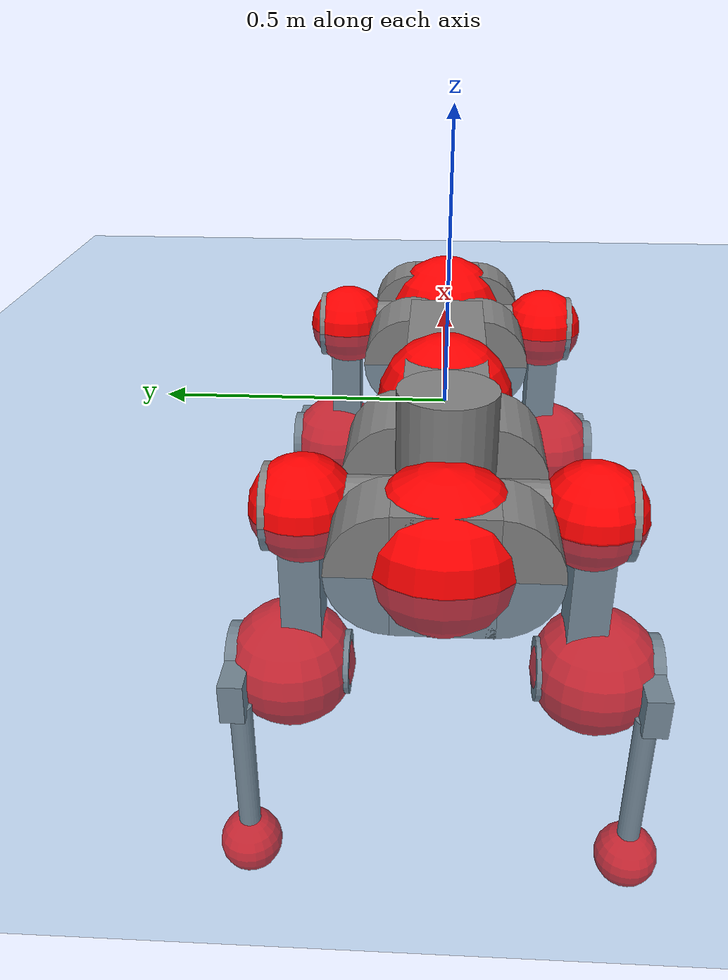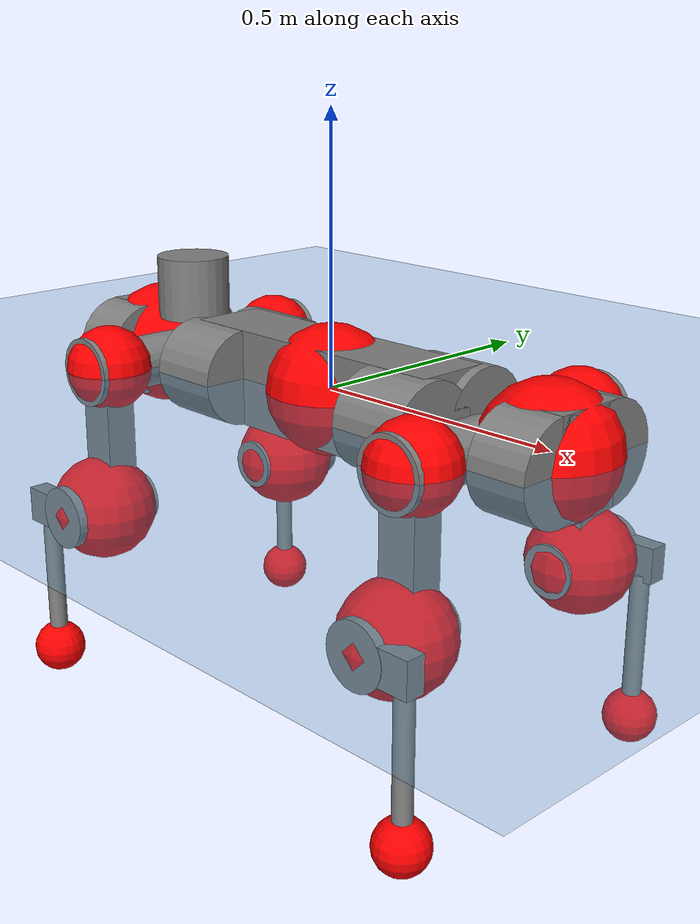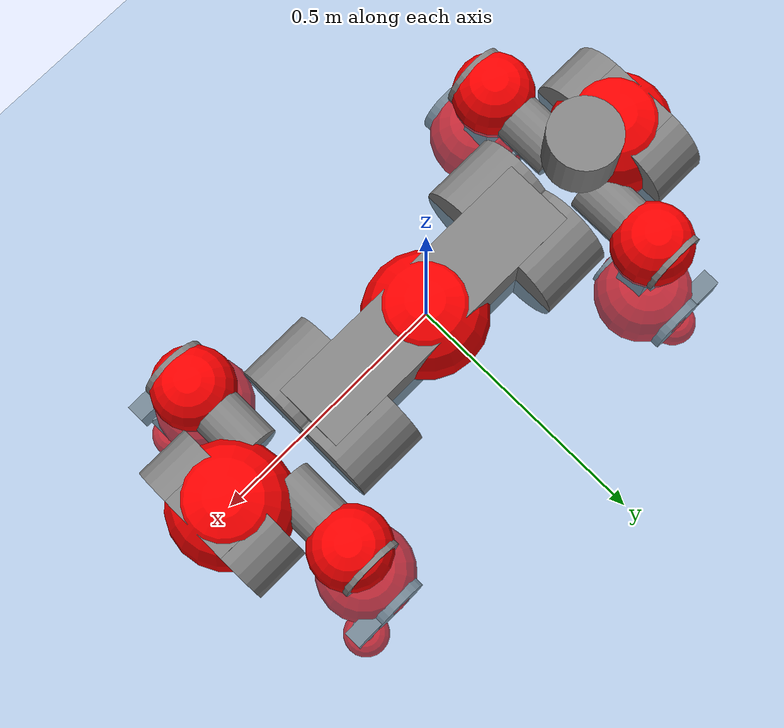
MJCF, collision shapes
<mujoco model="anymal_c">
  <compiler angle="radian" assetdir="assets" balanceinertia="true" inertiafromgeom="false"/>

  <option timestep="0.005" density="1.2" viscosity="2e-05"/>

  <size nkey="1"/>

  <visual>
    <quality shadowsize="8192"/>
    <map shadowclip="0.5"/>
  </visual>

  <default>
    <default class="/">
      <material specular="0" shininess="0.25"/>
      <geom contype="0" conaffinity="0" group="1" solref="-1000 -80"/>
      <site size="0.01 0.005 0.005" group="5"/>
      <general forcelimited="true" forcerange="-80 80" biastype="affine" gainprm="80" biasprm="0 -80 -2"/>
      <default class="anymal_c">
        <joint armature="0.01" damping="0.01" frictionloss="0.1"/>
        <default class="visual">
          <geom type="mesh" group="2"/>
          <default class="visual_zflip"/>
        </default>
        <default class="collision">
          <geom type="cylinder" group="3"/>
          <default class="foot">
            <geom size="0.03 0 0" type="sphere" condim="6" priority="1" friction="0.8 0.02 0.01" solimp="0.015 1 0.03"/>
          </default>
        </default>
      </default>
      <default class="reward_collision_sphere">
        <geom group="5" rgba="1 0 0 1"/>
      </default>
    </default>
  </default>

  <asset>
    <texture type="skybox" colorspace="auto" name="//unnamed_texture_0" builtin="gradient" rgb1="0.95 0.95 0.95" rgb2="0.95 0.95 0.95" width="100" height="600"/>
    <texture type="2d" colorspace="auto" name="texplane" builtin="checker" rgb1="0.345 0.575 0.748" rgb2="0.345 0.575 0.748" markrgb="1 1 1" width="512" height="512"/>
    <texture type="2d" colorspace="linear" name="base" file="base.png"/>
    <texture type="2d" colorspace="linear" name="top_shell" file="top_shell.png"/>
    <texture type="2d" colorspace="linear" name="bottom_shell" file="bottom_shell.png"/>
    <texture type="2d" colorspace="linear" name="remote" file="remote.png"/>
    <texture type="2d" colorspace="linear" name="hatch" file="hatch.png"/>
    <texture type="2d" colorspace="linear" name="handle" file="handle.png"/>
    <texture type="2d" colorspace="linear" name="face" file="face.png"/>
    <texture type="2d" colorspace="linear" name="battery" file="battery.png"/>
    <texture type="2d" colorspace="linear" name="lidar_cage" file="lidar_cage.png"/>
    <texture type="2d" colorspace="linear" name="depth_camera" file="depth_camera.png"/>
    <texture type="2d" colorspace="linear" name="wide_angle_camera" file="wide_angle_camera.png"/>
    <texture type="2d" colorspace="linear" name="lidar" file="lidar.png"/>
    <texture type="2d" colorspace="linear" name="drive" file="drive.png"/>
    <texture type="2d" colorspace="linear" name="hip_l" file="hip_l.png"/>
    <texture type="2d" colorspace="linear" name="shank_l" file="shank_l.png"/>
    <texture type="2d" colorspace="linear" name="foot" file="foot.png"/>
    <texture type="2d" colorspace="linear" name="thigh" file="thigh.png"/>
    <texture type="2d" colorspace="linear" name="shank_r" file="shank_r.png"/>
    <texture type="2d" colorspace="linear" name="hip_r" file="hip_r.png"/>
    <material name="MatPlane" class="/" texture="texplane" texuniform="true" texrepeat="2 2" specular="0.9" shininess="0.5"/>
    <material name="black_plastic" class="/" rgba="0.007 0.007 0.007 1"/>
    <material name="green" class="/" rgba="0.052 0.178 0.033 1"/>
    <material name="red" class="/" rgba="0.178 0.006 0.005 1"/>
    <material name="yellow" class="/" rgba="0.178 0.119 0.006 1"/>
    <material name="lwl" class="/" rgba="0.8 0.8 0.8 1"/>
    <material name="base" class="/" texture="base"/>
    <material name="top_shell" class="/" texture="top_shell"/>
    <material name="bottom_shell" class="/" texture="bottom_shell"/>
    <material name="hip_l" class="/" texture="hip_l"/>
    <material name="thigh" class="/" texture="thigh"/>
    <material name="shank_l" class="/" texture="shank_l"/>
    <material name="foot" class="/" texture="foot"/>
    <material name="hip_r" class="/" texture="hip_r"/>
    <material name="shank" class="/" texture="shank_r"/>
    <material name="hatch" class="/" texture="hatch"/>
    <material name="remote" class="/" texture="remote"/>
    <material name="handle" class="/" texture="handle"/>
    <material name="face" class="/" texture="face"/>
    <material name="depth_camera" class="/" texture="depth_camera"/>
    <material name="wide_angle_camera" class="/" texture="wide_angle_camera"/>
    <material name="battery" class="/" texture="battery"/>
    <material name="lidar_cage" class="/" texture="lidar_cage"/>
    <material name="lidar" class="/" texture="lidar"/>
    <material name="drive" class="/" texture="drive"/>
    <mesh name="base_0" class="/" file="base_0.obj"/>
    <mesh name="base_1" class="/" file="base_1.obj"/>
    <mesh name="base_2" class="/" file="base_2.obj"/>
    <mesh name="base_3" class="/" file="base_3.obj"/>
    <mesh name="base_4" class="/" file="base_4.obj"/>
    <mesh name="base_5" class="/" file="base_5.obj"/>
    <mesh name="top_shell" class="/" file="top_shell.obj"/>
    <mesh name="bottom_shell" class="/" file="bottom_shell.obj"/>
    <mesh name="remote" class="/" file="remote.obj"/>
    <mesh name="handle" class="/" file="handle.obj"/>
    <mesh name="face" class="/" file="face.obj"/>
    <mesh name="wide_angle_camera" class="/" file="wide_angle_camera.obj"/>
    <mesh name="depth_camera" class="/" file="depth_camera.obj"/>
    <mesh name="battery" class="/" file="battery.obj"/>
    <mesh name="lidar_cage" class="/" file="lidar_cage.obj"/>
    <mesh name="lidar" class="/" file="lidar.obj"/>
    <mesh name="drive" class="/" file="drive.obj"/>
    <mesh name="hip_l" class="/" file="hip_l.obj"/>
    <mesh name="thigh" class="/" file="thigh.obj"/>
    <mesh name="shank_l" class="/" file="shank_l.obj"/>
    <mesh name="foot" class="/" file="foot.obj"/>
    <mesh name="hip_r" class="/" file="hip_r.obj"/>
    <mesh name="hatch" class="/" file="hatch.obj"/>
    <mesh name="shank_r" class="/" file="shank_r.obj"/>
  </asset>

  <worldbody>
    <geom name="floor" class="/" size="100 100 0.125" type="plane" group="0" material="MatPlane"/>
    <light name="toplight_shadow" class="/" pos="0 0 5" dir="0.0990148 0.0990148 -0.990148" type="directional" ambient="0.04 0.04 0.04" diffuse="0.55 0.55 0.55" specular="0.12 0.12 0.12"/>
    <light name="toplight_fill" class="/" pos="0 0 5" dir="0.0990148 0.0990148 -0.990148" type="directional" castshadow="false" ambient="0.04 0.04 0.04" diffuse="0.3 0.3 0.3" specular="0.08 0.08 0.08"/>
    <body name="trunk" childclass="anymal_c" pos="0.00251834 -6.20223e-05 -0.000886535" quat="0.999999 0.000324783 0.000572444 -0.00118886">
      <inertial pos="-6.49963e-05 0.000378306 0.049031" quat="0.502196 0.500437 0.501819 0.495521" mass="18.9334" diaginertia="1.01448 0.477832 0.193652"/>
      <joint name="//unnamed_joint_0" type="free" armature="0" damping="0" frictionloss="0"/>
      <geom name="//unnamed_geom_1" class="visual" material="green" mesh="base_0"/>
      <geom name="//unnamed_geom_2" class="visual" material="yellow" mesh="base_1"/>
      <geom name="//unnamed_geom_3" class="visual" material="red" mesh="base_2"/>
      <geom name="//unnamed_geom_4" class="visual" material="black_plastic" mesh="base_3"/>
      <geom name="//unnamed_geom_5" class="visual" material="lwl" mesh="base_4"/>
      <geom name="//unnamed_geom_6" class="visual" material="base" mesh="base_5"/>
      <geom name="trunk_1" class="collision" size="0.29289 0.0706976 0.0908969" type="box"/>
      <geom name="trunk_2" class="collision" size="0.0908969 0.0732225" pos="0.239113 0.0665351 0" quat="0.707107 0 0.707107 0"/>
      <geom name="trunk_3" class="collision" size="0.0908969 0.0732225" pos="-0.239113 0.0665351 0" quat="0.707107 0 0.707107 0"/>
      <geom name="trunk_4" class="collision" size="0.0908969 0.0732225" pos="0.239113 -0.0665351 0" quat="0.707107 0 0.707107 0"/>
      <geom name="trunk_5" class="collision" size="0.0908969 0.0732225" pos="-0.239113 -0.0665351 0" quat="0.707107 0 0.707107 0"/>
      <geom name="//unnamed_geom_12" class="visual" material="top_shell" mesh="top_shell"/>
      <geom name="//unnamed_geom_13" class="visual" material="bottom_shell" mesh="bottom_shell"/>
      <geom name="//unnamed_geom_14" class="visual" material="remote" mesh="remote"/>
      <geom name="//unnamed_geom_15" class="visual" material="handle" mesh="handle"/>
      <geom name="//unnamed_geom_16" class="visual" pos="0.455688 0 0" quat="1 0 0 0" material="face" mesh="face"/>
      <geom name="trunk_6" class="collision" size="0.0555481 0.0706976 0.0908969" pos="0.516154 0 0" type="box"/>
      <geom name="//unnamed_geom_18" class="collision" size="0.0908969 0.0555481" pos="0.516154 0.0665351 0" quat="0.707107 0 0.707107 0"/>
      <geom name="//unnamed_geom_19" class="collision" size="0.0908969 0.0555481" pos="0.516154 -0.0665351 0" quat="0.707107 0 0.707107 0"/>
      <geom name="//unnamed_geom_20" class="visual" pos="0.507519 0 -0.0277097" quat="0.965926 0 0.258819 0" material="depth_camera" mesh="depth_camera"/>
      <geom name="//unnamed_geom_21" class="visual" pos="0.563976 0 0.014671" material="wide_angle_camera" mesh="wide_angle_camera"/>
      <geom name="//unnamed_geom_22" class="visual_zflip" pos="-0.455688 0 0" quat="0 0 0 1" material="face" mesh="face"/>
      <geom name="trunk_7" class="collision" size="0.0555481 0.0706976 0.0908969" pos="-0.516154 0 0" quat="0 0 0 1" type="box"/>
      <geom name="//unnamed_geom_24" class="collision" size="0.0908969 0.0555481" pos="-0.516154 -0.0665351 0" quat="0 -0.707107 0 0.707107"/>
      <geom name="//unnamed_geom_25" class="collision" size="0.0908969 0.0555481" pos="-0.516154 0.0665351 0" quat="0 -0.707107 0 0.707107"/>
      <geom name="//unnamed_geom_26" class="visual" pos="-0.507519 0 -0.0277097" quat="0 -0.258819 0 0.965926" material="depth_camera" mesh="depth_camera"/>
      <geom name="//unnamed_geom_27" class="visual_zflip" pos="-0.563976 0 0.014671" quat="0 0 0 1" material="wide_angle_camera" mesh="wide_angle_camera"/>
      <geom name="//unnamed_geom_28" class="visual" material="battery" mesh="battery"/>
      <geom name="//unnamed_geom_29" class="visual" pos="0 0.070717 0.0293767" quat="0.683013 -0.183013 0.183013 0.683013" material="depth_camera" mesh="depth_camera"/>
      <geom name="//unnamed_geom_30" class="visual" pos="0 -0.070717 0.0293767" quat="0.683013 0.183013 0.183013 -0.683013" material="depth_camera" mesh="depth_camera"/>
      <geom name="//unnamed_geom_31" class="visual" pos="-0.40017 0 0.0720319" quat="1 0 0 0" material="lidar_cage" mesh="lidar_cage"/>
      <geom name="trunk_8" class="collision" size="0.0706976 0.0605979" pos="-0.40017 0 0.130833"/>
      <geom name="//unnamed_geom_33" class="visual" pos="-0.40017 -5.84857e-05 0.13936" quat="0.707107 0 0 -0.707107" material="lidar" mesh="lidar"/>
      <geom name="//unnamed_geom_34" class="visual" pos="0.329701 0.0988627 -5.0928e-10" quat="0.258819 0.965926 0 0" material="drive" mesh="drive"/>
      <geom name="//unnamed_geom_35" class="visual" pos="0.329701 -0.0988627 5.0928e-10" quat="0.258819 -0.965926 0 0" material="drive" mesh="drive"/>
      <geom name="//unnamed_geom_36" class="visual" pos="-0.329701 0.0988627 5.0928e-10" quat="0 0 0.965926 -0.258819" material="drive" mesh="drive"/>
      <geom name="//unnamed_geom_37" class="visual" pos="-0.329701 -0.0988627 -5.0928e-10" quat="0 0 -0.965926 -0.258819" material="drive" mesh="drive"/>
      <geom name="//unnamed_geom_38" class="visual" pos="0.127527 0 0.0715418" quat="1 0 0 0" material="hatch" mesh="hatch"/>
      <geom name="//unnamed_geom_39" class="reward_collision_sphere" size="0.121196"/>
      <geom name="//unnamed_geom_40" class="reward_collision_sphere" size="0.121196" pos="0.494716 0 0"/>
      <geom name="//unnamed_geom_41" class="reward_collision_sphere" size="0.121196" pos="-0.494716 0 0"/>
      <site name="imu" pos="0.274221 0.0150393 0.0590326" size="0.0100997"/>
      <camera name="track" pos="0 -1.901 0" quat="0.707107 0.707107 0 0" mode="trackcom"/>
      <camera name="ego_camera" pos="0.494716 0 -0.039201" quat="-0.5 -0.5 0.5 0.5"/>
      <body name="LF_HIP" pos="0.329975 0.100311 0.000195917" quat="0.258564 0.965994 -0.000120496 -6.55617e-05">
        <inertial pos="0.0613189 -0.0165409 -0.00707331" quat="-0.126199 0.709425 -0.134733 0.680174" mass="2.79598" diaginertia="0.00957316 0.0038241 0.00297548"/>
        <joint name="LF_HAA" pos="0 0 0" axis="0.999892 0.00780225 -0.012445" range="-0.667047 0.504269" armature="0.00993498" damping="0.0156214" frictionloss="0.100012"/>
        <geom name="//unnamed_geom_42" class="visual" pos="0 -2.99586e-05 4.92068e-06" quat="0.258819 -0.965926 0 0" material="hip_l" mesh="hip_l"/>
        <geom name="//unnamed_geom_43" class="visual" pos="0.0658522 -0.0778444 -0.0451618" quat="0.183013 -0.683013 0.683013 0.183013" material="drive" mesh="drive"/>
        <geom name="//unnamed_geom_44" class="collision" size="0.0504983 0.0706976" pos="0.0658522 -0.0113678 -0.00676707" quat="-0.353553 -0.612372 0.612372 -0.353553"/>
        <body name="LF_THIGH" pos="0.0674322 -0.0684898 -0.0394678" quat="0.182676 -0.682227 0.683668 0.183828">
          <inertial pos="0.0365228 -0.00187775 -0.243501" quat="0.993157 -0.00458614 -0.0805884 0.0844007" mass="3.06088" diaginertia="0.0477239 0.0224954 0.00378006"/>
          <joint name="LF_HFE" pos="0 0 0" axis="0.999999 0.000755767 -0.00085664" range="-3.13542 3.14064" armature="0.00998405" damping="0.0124521" frictionloss="0.10199"/>
          <geom name="//unnamed_geom_45" class="visual" pos="0.00296186 4.6672e-06 0" quat="0.707107 0 0 -0.707107" material="thigh" mesh="thigh"/>
          <geom name="//unnamed_geom_46" class="collision" size="0.0656477 0.0403986" pos="0.0439747 0 0" quat="0.5 0.5 -0.5 -0.5"/>
          <geom name="//unnamed_geom_47" class="collision" size="0.0378737 0.030299 0.142722" pos="0.0329811 0 -0.138491" quat="0.707107 0 0 -0.707107" type="box"/>
          <geom name="//unnamed_geom_48" class="visual" pos="0.110267 0 -0.279307" quat="1 0 0 0" material="drive" mesh="drive"/>
          <geom name="//unnamed_geom_49" class="collision" size="0.0504983 0.0706976" pos="0.0333109 0 -0.279307" quat="0.707107 0 0.707107 0"/>
          <geom name="//unnamed_geom_50" class="reward_collision_sphere" size="0.0807972" pos="0.0274842 0 0"/>
          <body name="LF_SHANK" pos="0.109534 -0.00313384 -0.279185" quat="0.999999 -4.68692e-05 0.000603515 0.00085926">
            <inertial pos="0.00335155 -0.0580185 -0.0769288" quat="0.992946 -0.115631 -0.00162798 -0.0261616" mass="0.605183" diaginertia="0.0164595 0.00756931 0.0010352"/>
            <joint name="LF_KFE" pos="0 0 0" axis="0.999999 0.000713583 0.000753445" range="-3.1949 3.14552" armature="0.0106647" damping="0" frictionloss="0.107392"/>
            <geom name="//unnamed_geom_51" class="visual" pos="0.000965799 0.00514969 0" quat="0.707107 0 0 -0.707107" material="shank_l" mesh="shank_l"/>
            <geom name="LF_kfe_act" class="collision" size="0.0605979 0.0201993" pos="0.0219874 0 0" quat="0.5 0.5 -0.5 -0.5"/>
            <geom name="//unnamed_geom_53" class="collision" size="0.058072 0.0340863 0.0191893" pos="0.0219874 -0.0546529 0" quat="0.5 0.5 -0.5 -0.5" type="box"/>
            <geom name="//unnamed_geom_54" class="visual" pos="0.0143465 -0.0819371 -0.331219" quat="0.382683 0 0 -0.92388" material="foot" mesh="foot"/>
            <geom name="LF_calf" class="collision" size="0.0176744 0.14266" pos="0.0143468 -0.0835966 -0.16561" quat="0.707107 0 0 -0.707107"/>
            <geom name="LF_foot" class="foot" size="0.0327075" pos="0.0143468 -0.0835966 -0.309169" quat="0.707107 0 0 -0.707107"/>
            <geom name="//unnamed_geom_57" class="reward_collision_sphere" size="0.100997" pos="-0.0549684 0 0"/>
            <geom name="//unnamed_geom_58" class="reward_collision_sphere" size="0.0504983" pos="0.0143468 -0.0835966 -0.309169"/>
            <site name="LF_foot" class="foot" pos="0.0143468 -0.0835966 -0.309169" quat="0.707107 0 0 -0.707107" size="0.0100997"/>
          </body>
        </body>
      </body>
      <body name="RF_HIP" pos="0.329099 -0.0987108 -0.00253026" quat="0.258258 -0.966075 -0.00116837 -0.000675398">
        <inertial pos="0.0637166 0.0122851 -0.00793397" quat="0.14342 0.67072 0.131086 0.715808" mass="2.83228" diaginertia="0.00894263 0.00374741 0.00284355"/>
        <joint name="RF_HAA" pos="0 0 0" axis="0.99999 0.00426038 0.00127865" range="-0.499244 0.725834" armature="0.00982249" damping="0.0105159" frictionloss="0.0873468"/>
        <geom name="//unnamed_geom_59" class="visual" pos="0 2.99584e-05 4.92067e-06" quat="0.258819 0.965926 0 0" material="hip_r" mesh="hip_r"/>
        <geom name="//unnamed_geom_60" class="visual" pos="0.0658522 0.0778444 -0.0451618" quat="0.183013 0.683013 0.683013 -0.183013" material="drive" mesh="drive"/>
        <geom name="//unnamed_geom_61" class="collision" size="0.0504983 0.0706976" pos="0.0658522 0.0113678 -0.00676707" quat="-0.353553 0.612372 0.612372 0.353553"/>
        <body name="RF_THIGH" pos="0.0658355 0.0660938 -0.040293" quat="0.183047 0.683069 0.682994 -0.18284">
          <inertial pos="0.0355209 -0.00257259 -0.240197" quat="0.991556 -0.00272277 -0.086196 0.096847" mass="3.19732" diaginertia="0.0481333 0.0230063 0.00386038"/>
          <joint name="RF_HFE" pos="0 0 0" axis="0.999999 -0.000107227 -0.00133463" range="-3.12409 3.19244" armature="0.0101026" damping="0.0150719" frictionloss="0.104215"/>
          <geom name="//unnamed_geom_62" class="visual" pos="0.00296186 4.6672e-06 0" quat="0.707107 0 0 -0.707107" material="thigh" mesh="thigh"/>
          <geom name="//unnamed_geom_63" class="collision" size="0.0656477 0.0403986" pos="0.0439747 0 0" quat="0.5 0.5 0.5 0.5"/>
          <geom name="//unnamed_geom_64" class="collision" size="0.0378737 0.030299 0.142722" pos="0.0329811 0 -0.138491" quat="0.707107 0 0 0.707107" type="box"/>
          <geom name="//unnamed_geom_65" class="visual" pos="0.110267 0 -0.279307" quat="1 0 0 0" material="drive" mesh="drive"/>
          <geom name="//unnamed_geom_66" class="collision" size="0.0504983 0.0706976" pos="0.0333109 0 -0.279307" quat="0.707107 0 0.707107 0"/>
          <geom name="//unnamed_geom_67" class="reward_collision_sphere" size="0.0807972" pos="0.0274842 0 0"/>
          <body name="RF_SHANK" pos="0.109996 -0.00237831 -0.279323" quat="1 -4.81482e-05 -2.30303e-05 8.56782e-05">
            <inertial pos="0.00642524 0.0584612 -0.0785701" quat="0.992639 0.114677 -0.00396816 0.0387517" mass="0.60268" diaginertia="0.0162748 0.00717597 0.000981838"/>
            <joint name="RF_KFE" pos="0 0 0" axis="0.999962 -0.000210483 0.00872691" range="-3.14624 3.18189" armature="0.010246" damping="0.0219553" frictionloss="0.099525"/>
            <geom name="//unnamed_geom_68" class="visual" pos="0.000965794 -0.00514968 0" quat="0.707107 0 0 0.707107" material="shank" mesh="shank_r"/>
            <geom name="RF_kfe_act" class="collision" size="0.0605979 0.0201993" pos="0.0219874 0 0" quat="0.5 0.5 0.5 0.5"/>
            <geom name="//unnamed_geom_70" class="collision" size="0.058072 0.0340863 0.0191893" pos="0.0219874 0.0546529 0" quat="0.5 0.5 0.5 0.5" type="box"/>
            <geom name="//unnamed_geom_71" class="visual" pos="0.014347 0.0819371 -0.331219" quat="0.382683 0 0 0.92388" material="foot" mesh="foot"/>
            <geom name="RF_calf" class="collision" size="0.0176744 0.14266" pos="0.0143468 0.0835966 -0.16561" quat="0.707107 0 0 0.707107"/>
            <geom name="RF_foot" class="foot" size="0.0270483" pos="0.0143468 0.0835966 -0.309169" quat="0.707107 0 0 0.707107"/>
            <geom name="//unnamed_geom_74" class="reward_collision_sphere" size="0.100997" pos="-0.0549684 0 0"/>
            <geom name="//unnamed_geom_75" class="reward_collision_sphere" size="0.0504983" pos="0.0143468 0.0835966 -0.309169"/>
            <site name="RF_foot" class="foot" pos="0.0143468 0.0835966 -0.309169" quat="0.707107 0 0 0.707107" size="0.0100997"/>
          </body>
        </body>
      </body>
      <body name="LH_HIP" pos="-0.329142 0.099475 -0.00114909" quat="-0.000190456 8.49913e-05 0.965929 -0.258808">
        <inertial pos="0.0625538 0.0169731 -0.0106552" quat="0.143425 0.681045 0.135322 0.705191" mass="2.92188" diaginertia="0.00925579 0.00374095 0.00303555"/>
        <joint name="LH_HAA" pos="0 0 0" axis="1 -9.4756e-05 7.4636e-05" range="-0.474914 0.690546" armature="0.00884378" damping="0.0133501" frictionloss="0.114875"/>
        <geom name="//unnamed_geom_76" class="visual" pos="0 2.99584e-05 4.92067e-06" quat="-0.258819 -0.965926 0 0" material="hip_r" mesh="hip_r"/>
        <geom name="//unnamed_geom_77" class="visual" pos="0.0658522 0.0778444 -0.0451618" quat="0.183013 0.683013 0.683013 -0.183013" material="drive" mesh="drive"/>
        <geom name="//unnamed_geom_78" class="collision" size="0.0504983 0.0706976" pos="0.0658522 0.0113678 -0.00676707" quat="-0.353553 0.612372 0.612372 0.353553"/>
        <body name="LH_THIGH" pos="0.0654549 0.0659722 -0.0393845" quat="0.183164 0.683234 0.68275 -0.183018">
          <inertial pos="0.0340443 -0.000147644 -0.241598" quat="0.992725 -0.0053201 -0.0806706 0.0892286" mass="3.23577" diaginertia="0.0483678 0.022665 0.00384147"/>
          <joint name="LH_HFE" pos="0 0 0" axis="0.999975 0.00193012 0.00678967" stiffness="0.00673611" range="-3.1351 3.13993" armature="0.0112994" damping="0.000762179" frictionloss="0.100214"/>
          <geom name="//unnamed_geom_79" class="visual" pos="0.00296186 4.6672e-06 0" quat="0.707107 0 0 -0.707107" material="thigh" mesh="thigh"/>
          <geom name="//unnamed_geom_80" class="collision" size="0.0656477 0.0403986" pos="0.0439747 0 0" quat="0.5 0.5 -0.5 -0.5"/>
          <geom name="//unnamed_geom_81" class="collision" size="0.0378737 0.030299 0.142722" pos="0.0329811 0 -0.138491" quat="0.707107 0 0 -0.707107" type="box"/>
          <geom name="//unnamed_geom_82" class="visual" pos="0.110267 0 -0.279307" quat="1 0 0 0" material="drive" mesh="drive"/>
          <geom name="//unnamed_geom_83" class="collision" size="0.0504983 0.0706976" pos="0.0333109 0 -0.279307" quat="0.707107 0 0.707107 0"/>
          <geom name="//unnamed_geom_84" class="reward_collision_sphere" size="0.0807972" pos="0.0274842 0 0"/>
          <body name="LH_SHANK" pos="0.110775 -0.000560806 -0.281651" quat="1 0.000554293 7.99999e-06 2.25693e-05">
            <inertial pos="0.00619553 0.0606972 -0.0789356" quat="0.99253 0.11941 -0.00636141 0.024206" mass="0.604183" diaginertia="0.015969 0.00716512 0.000975555"/>
            <joint name="LH_KFE" pos="0 0 0" axis="0.999951 0.00264344 -0.00950033" range="-3.14338 3.15337" armature="0.0108273" damping="0" frictionloss="0.11436"/>
            <geom name="//unnamed_geom_85" class="visual" pos="0.000965794 -0.00514968 0" quat="-0.707107 0 0 -0.707107" material="shank" mesh="shank_r"/>
            <geom name="LH_kfe_act" class="collision" size="0.0605979 0.0201993" pos="0.0219874 0 0" quat="0.5 0.5 -0.5 -0.5"/>
            <geom name="//unnamed_geom_87" class="collision" size="0.058072 0.0340863 0.0191893" pos="0.0219874 0.0546529 0" quat="0.5 0.5 -0.5 -0.5" type="box"/>
            <geom name="//unnamed_geom_88" class="visual" pos="0.014347 0.0819371 -0.331219" quat="-0.382683 0 0 -0.92388" material="foot" mesh="foot"/>
            <geom name="LH_calf" class="collision" size="0.0176744 0.14266" pos="0.0143468 0.0835966 -0.16561" quat="0.707107 0 0 -0.707107"/>
            <geom name="LH_foot" class="foot" size="0.0312505" pos="0.0143468 0.0835966 -0.309169" quat="0.707107 0 0 -0.707107"/>
            <geom name="//unnamed_geom_91" class="reward_collision_sphere" size="0.100997" pos="-0.0549684 0 0"/>
            <geom name="//unnamed_geom_92" class="reward_collision_sphere" size="0.0504983" pos="0.0143468 0.0835966 -0.309169"/>
            <site name="LH_foot" class="foot" pos="0.0143468 0.0835966 -0.309169" quat="0.707107 0 0 -0.707107" size="0.0100997"/>
          </body>
        </body>
      </body>
      <body name="RH_HIP" pos="-0.330032 -0.100676 -0.00122037" quat="0.00046243 0.000769362 -0.966174 -0.25789">
        <inertial pos="0.0649289 -0.0122405 -0.0109942" quat="-0.13732 0.704902 -0.133406 0.682978" mass="2.85743" diaginertia="0.0093299 0.00377969 0.00297517"/>
        <joint name="RH_HAA" pos="0 0 0" axis="0.999905 -0.0136526 0.00173177" stiffness="0.000875384" range="-0.727587 0.472157" armature="0.00959131" damping="0.0144708" frictionloss="0.0956261"/>
        <geom name="//unnamed_geom_93" class="visual" pos="0 -2.99586e-05 4.92068e-06" quat="-0.258819 0.965926 0 0" material="hip_l" mesh="hip_l"/>
        <geom name="//unnamed_geom_94" class="visual" pos="0.0658522 -0.0778444 -0.0451618" quat="-0.183013 0.683013 -0.683013 -0.183013" material="drive" mesh="drive"/>
        <geom name="//unnamed_geom_95" class="collision" size="0.0504983 0.0706976" pos="0.0658522 -0.0113678 -0.00676707" quat="0.353553 0.612372 -0.612372 0.353553"/>
        <body name="RH_THIGH" pos="0.0666329 -0.0713069 -0.0439512" quat="-0.183106 0.683111 -0.682872 -0.183076">
          <inertial pos="0.0346994 -0.000307612 -0.240449" quat="0.993246 -0.00472245 -0.0801042 0.0838041" mass="3.05786" diaginertia="0.0492261 0.0238014 0.0037695"/>
          <joint name="RH_HFE" pos="0 0 0" axis="0.999997 0.000950364 0.00202772" range="-3.13613 3.19939" armature="0.0102977" damping="0.00919414" frictionloss="0.0956395"/>
          <geom name="//unnamed_geom_96" class="visual" pos="0.00296186 4.6672e-06 0" quat="0.707107 0 0 -0.707107" material="thigh" mesh="thigh"/>
          <geom name="//unnamed_geom_97" class="collision" size="0.0656477 0.0403986" pos="0.0439747 0 0" quat="0.5 0.5 0.5 0.5"/>
          <geom name="//unnamed_geom_98" class="collision" size="0.0378737 0.030299 0.142722" pos="0.0329811 0 -0.138491" quat="0.707107 0 0 0.707107" type="box"/>
          <geom name="//unnamed_geom_99" class="visual" pos="0.110267 0 -0.279307" quat="1 0 0 0" material="drive" mesh="drive"/>
          <geom name="//unnamed_geom_100" class="collision" size="0.0504983 0.0706976" pos="0.0333109 0 -0.279307" quat="0.707107 0 0.707107 0"/>
          <geom name="//unnamed_geom_101" class="reward_collision_sphere" size="0.0807972" pos="0.0274842 0 0"/>
          <body name="RH_SHANK" pos="0.111317 -0.00027814 -0.277273" quat="1 0.000288338 6.60627e-05 6.58995e-06">
            <inertial pos="0.00374752 -0.0590158 -0.0796212" quat="0.992084 -0.122707 -0.000306373 -0.0266867" mass="0.607468" diaginertia="0.0163784 0.00723446 0.001048"/>
            <joint name="RH_KFE" pos="0 0 0" axis="0.999885 -0.00168529 0.01508" range="-3.11441 3.13403" armature="0.0105013" damping="0.021677" frictionloss="0.105045"/>
            <geom name="//unnamed_geom_102" class="visual" pos="0.000965799 0.00514969 0" quat="0.707107 0 0 -0.707107" material="shank_l" mesh="shank_l"/>
            <geom name="RH_kfe_act" class="collision" size="0.0605979 0.0201993" pos="0.0219874 0 0" quat="0.5 0.5 0.5 0.5"/>
            <geom name="//unnamed_geom_104" class="collision" size="0.058072 0.0340863 0.0191893" pos="0.0219874 -0.0546529 0" quat="0.5 0.5 0.5 0.5" type="box"/>
            <geom name="//unnamed_geom_105" class="visual" pos="0.0143465 -0.0819371 -0.331219" quat="0.382683 0 0 -0.92388" material="foot" mesh="foot"/>
            <geom name="RH_calf" class="collision" size="0.0176744 0.14266" pos="0.0143468 -0.0835966 -0.16561" quat="0.707107 0 0 0.707107"/>
            <geom name="RH_foot" class="foot" size="0.0273987" pos="0.0143468 -0.0835966 -0.309169" quat="0.707107 0 0 0.707107"/>
            <geom name="//unnamed_geom_108" class="reward_collision_sphere" size="0.100997" pos="-0.0549684 0 0"/>
            <geom name="//unnamed_geom_109" class="reward_collision_sphere" size="0.0504983" pos="0.0143468 -0.0835966 -0.309169"/>
            <site name="RH_foot" class="foot" pos="0.0143468 -0.0835966 -0.309169" quat="0.707107 0 0 0.707107" size="0.0100997"/>
          </body>
        </body>
      </body>
    </body>
  </worldbody>

  <contact>
    <pair class="/" geom1="floor" geom2="LF_foot" name="//unnamed_contact_0"/>
    <pair class="/" geom1="floor" geom2="RF_foot" name="//unnamed_contact_1"/>
    <pair class="/" geom1="floor" geom2="LH_foot" name="//unnamed_contact_2"/>
    <pair class="/" geom1="floor" geom2="RH_foot" name="//unnamed_contact_3"/>
  </contact>

  <actuator>
    <general name="LF_HAA" class="/" joint="LF_HAA" forcerange="-82.0637 82.0637" gainprm="82.2486" biasprm="0 -82.2486 -1.97369"/>
    <general name="LF_HFE" class="/" joint="LF_HFE" forcerange="-76.92 76.92" gainprm="82.2486" biasprm="0 -82.2486 -1.97369"/>
    <general name="LF_KFE" class="/" joint="LF_KFE" forcerange="-81.7734 81.7734" gainprm="82.2486" biasprm="0 -82.2486 -1.97369"/>
    <general name="RF_HAA" class="/" joint="RF_HAA" forcerange="-80.2401 80.2401" gainprm="82.2486" biasprm="0 -82.2486 -1.97369"/>
    <general name="RF_HFE" class="/" joint="RF_HFE" forcerange="-87.5121 87.5121" gainprm="82.2486" biasprm="0 -82.2486 -1.97369"/>
    <general name="RF_KFE" class="/" joint="RF_KFE" forcerange="-81.7887 81.7887" gainprm="82.2486" biasprm="0 -82.2486 -1.97369"/>
    <general name="LH_HAA" class="/" joint="LH_HAA" forcerange="-89.2774 89.2774" gainprm="82.2486" biasprm="0 -82.2486 -1.97369"/>
    <general name="LH_HFE" class="/" joint="LH_HFE" forcerange="-78.894 78.894" gainprm="82.2486" biasprm="0 -82.2486 -1.97369"/>
    <general name="LH_KFE" class="/" joint="LH_KFE" forcerange="-73.3681 73.3681" gainprm="82.2486" biasprm="0 -82.2486 -1.97369"/>
    <general name="RH_HAA" class="/" joint="RH_HAA" forcerange="-75.4816 75.4816" gainprm="82.2486" biasprm="0 -82.2486 -1.97369"/>
    <general name="RH_HFE" class="/" joint="RH_HFE" forcerange="-89.47 89.47" gainprm="82.2486" biasprm="0 -82.2486 -1.97369"/>
    <general name="RH_KFE" class="/" joint="RH_KFE" forcerange="-78.4571 78.4571" gainprm="82.2486" biasprm="0 -82.2486 -1.97369"/>
  </actuator>

  <sensor>
    <gyro site="imu" name="imu_angular_velocity"/>
    <velocimeter site="imu" name="imu_linear_velocity"/>
    <framelinvel objtype="site" objname="LF_foot" name="LF_foot_global_linear_velocity"/>
    <framelinvel objtype="site" objname="RF_foot" name="RF_foot_global_linear_velocity"/>
    <framelinvel objtype="site" objname="LH_foot" name="LH_foot_global_linear_velocity"/>
    <framelinvel objtype="site" objname="RH_foot" name="RH_foot_global_linear_velocity"/>
  </sensor>

  <keyframe>
    <key name="home" qpos="0 0 0.55 1 0 0 0 0 0.4 -0.8 0 -0.4 0.8 0 -0.4 0.8 0 0.4 -0.8"/>
  </keyframe>
</mujoco>
